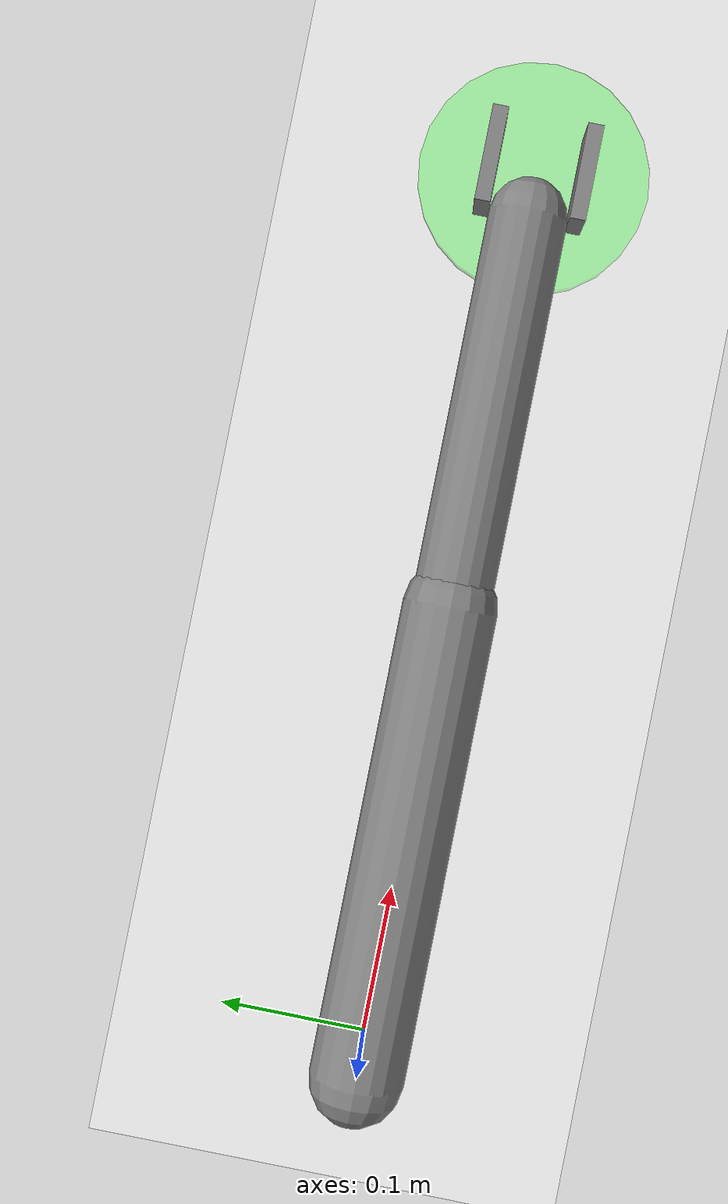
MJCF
<mujoco model="two_joint_pick_place">
  <visual>
    <global offwidth="1280" offheight="720"/>
  </visual>
  <compiler angle="degree" coordinate="local"/>
  <option timestep="0.002" gravity="0 0 -9.81" impratio="10"/>

  <default>
    <geom friction="2 0.1 0.1" condim="4"/>
    <joint damping="10"/>
  </default>

  <worldbody>

    <!-- Ground -->
    <geom type="plane" size="5 5 0.1" rgba="0.9 0.9 0.9 1"/>

    <!-- Target drop zone -->
    <geom name="target"
          type="cylinder"
          size="0.08 0.005"
          pos="0.6 0 0.005"
          rgba="0 1 0 0.3"
          contype="0"
          conaffinity="0"/>

    <!-- Arm Base -->
    <body name="base" pos="0 0 0.1">

      <joint name="shoulder_yaw"
             type="hinge"
             axis="0 0 1"
             range="-90 90"/>

      <joint name="shoulder"
             type="hinge"
             axis="0 1 0"
             range="-90 90"/>

      <geom type="capsule"
            fromto="0 0 0 0.3 0 0"
            size="0.03"
            mass="1"/>

      <!-- Link 2 -->
      <body name="link2" pos="0.3 0 0">

        <joint name="elbow"
               type="hinge"
               axis="0 1 0"
               range="-120 120"/>

        <geom type="capsule"
              fromto="0 0 0 0.25 0 0"
              size="0.025"
              mass="1"/>

        <!-- Gripper -->
        <body name="gripper" pos="0.25 0 0">

          <body pos="0 0.03 0">
            <joint name="fingerL"
                   type="slide"
                   axis="0 -1 0"
                   range="0 0.06"/>
            <geom type="box"
                  pos="0.03 0 0"
                  size="0.03 0.005 0.02"
                  mass="0.02"
                  friction="0.5 1 1"
                  condim="4"/>
          </body>

          <body pos="0 -0.03 0">
            <joint name="fingerR"
                   type="slide"
                   axis="0 1 0"
                   range="0 0.06"/>
            <geom type="box"
                  pos="0.03 0 0"
                  size="0.03 0.005 0.02"
                  mass="0.02"
                  friction="0.5 1 1"
                  condim="4"/>
          </body>

        </body>
      </body>
    </body>

    <body name="box" pos="0 0 0">
      <freejoint name="box_joint"/>
      <geom type="box"
            size="0.015 0.015 0.015"
            mass="0.02"
            rgba="0.9 0.2 0.2 1"
            friction="1.5 0.5 0.1"/>
    </body>
    <body name="box2" pos="0 0 0">
      <freejoint name="box2_joint"/>
      <geom type="box"
            size="0.015 0.015 0.015"
            mass="0.02"
            rgba="0.2 0.4 0.9 1"
            friction="1.5 0.5 0.1"/>
    </body>

  </worldbody>

  <tendon>
    <fixed name="gripper_tendon">
      <joint joint="fingerL" coef="1"/>
      <joint joint="fingerR" coef="1"/>
    </fixed>
  </tendon>

  <actuator>
    <position name="Shoulder Servo"
              joint="shoulder"
              kp="30"
              ctrlrange="-3.14 3.14"
              ctrllimited="true"/>

    <position name="Elbow Servo"
              joint="elbow"
              kp="50"
              ctrlrange="-2.094 2.094"
              ctrllimited="true"/>

    <position name="Gripper"
              tendon="gripper_tendon"
              kp="50"
              ctrlrange="0 0.05"
              ctrllimited="true"/>

    <position name="Shoulder Yaw Servo"
              joint="shoulder_yaw"
              kp="30"
              ctrlrange="-3.14 3.14"
              ctrllimited="true"/>
  </actuator>

</mujoco>
